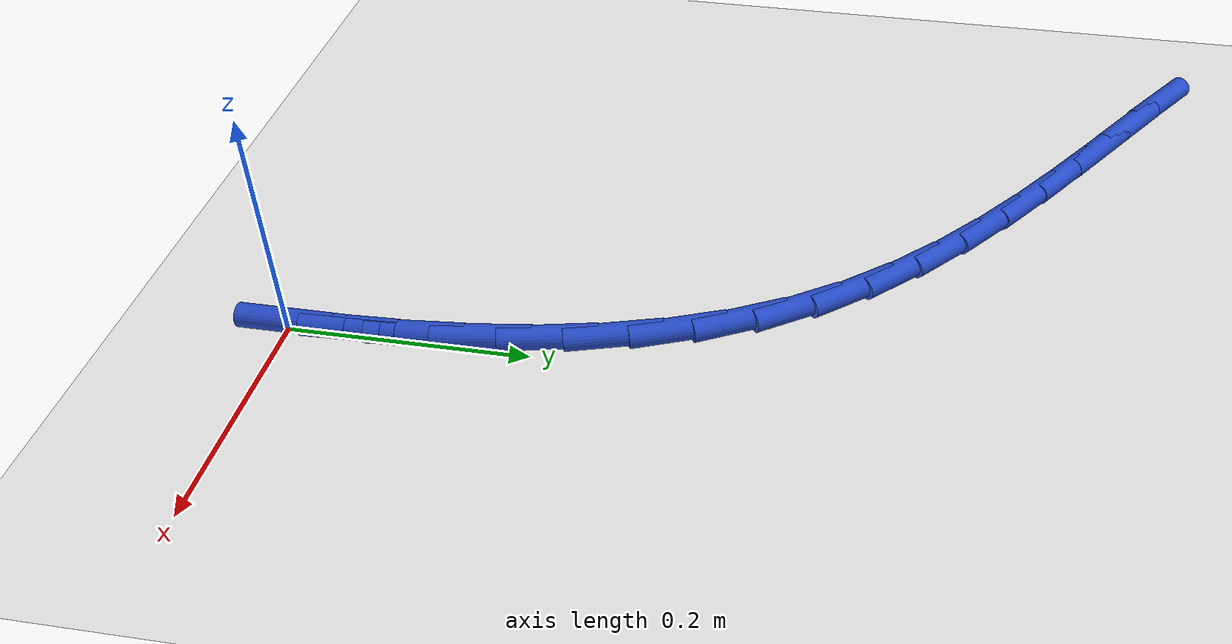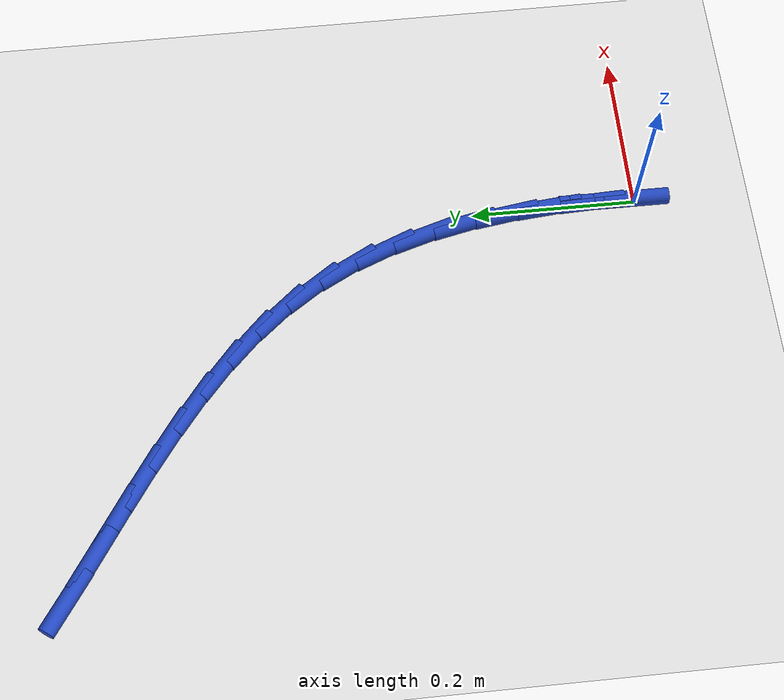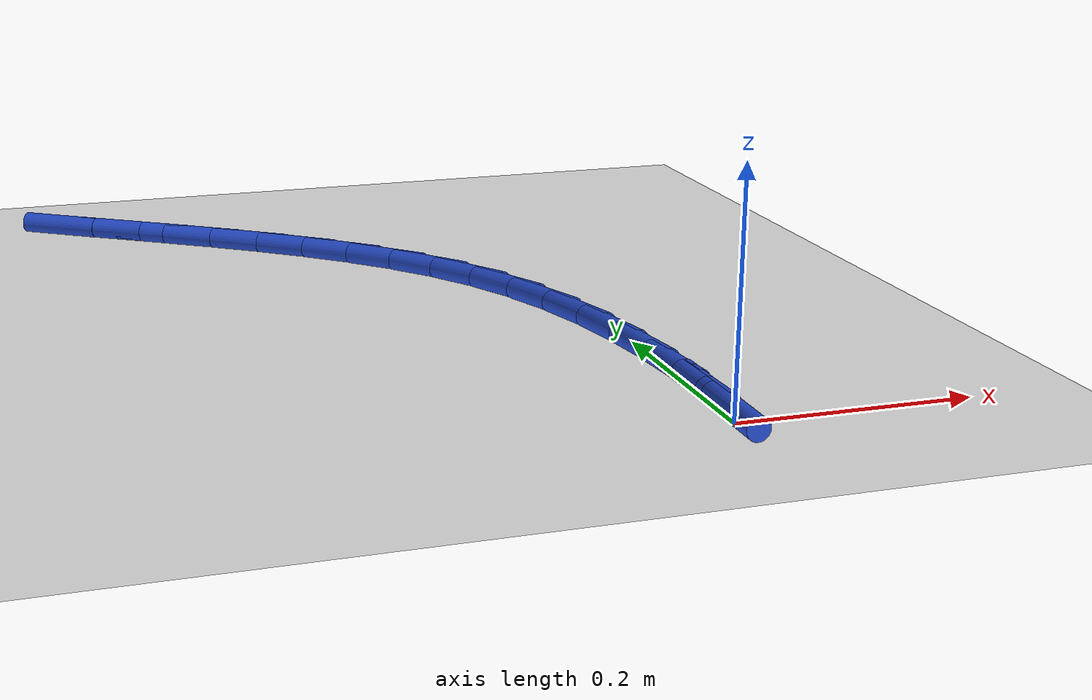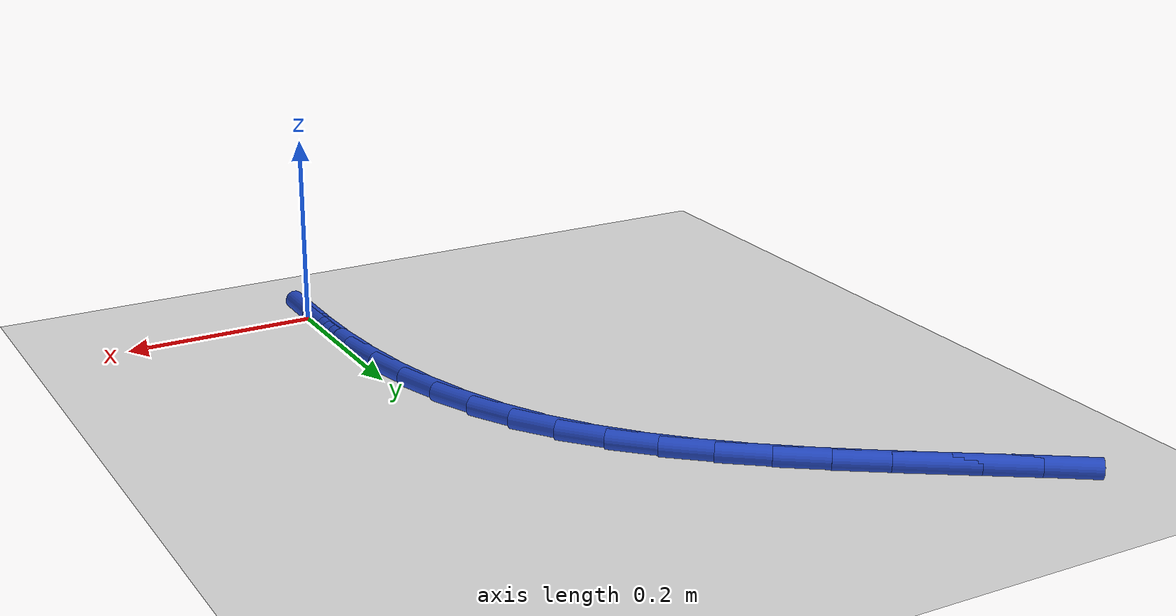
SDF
<sdf version="1.6">
 <world name="default">
  <model name="ground_plane">
   <static>1</static>
   <link name="link">
    <collision name="collision">
     <geometry><plane><normal>0 0 1</normal><size>100 100</size></plane></geometry>
     <surface><friction><ode><mu>100</mu><mu2>50</mu2></ode></friction></surface>
    </collision>
    <visual name="visual">
     <cast_shadows>0</cast_shadows>
     <geometry><plane><normal>0 0 1</normal><size>100 100</size></plane></geometry>
     <material>
      <script><uri>file://media/materials/scripts/gazebo.material</uri><name>Gazebo/WhiteGlow</name></script>
     </material>
    </visual>
   </link>
  </model>
  <model name="line">
   <link name="link_1">
    <pose>0.00016220308232994086 0.0534013091071658 0.01 0 1.57 -1.5304724078214895</pose>
    <collision name="collision">
     <geometry><cylinder><radius>0.01</radius><length>0.08</length></cylinder></geometry>
    </collision>
    <visual name="visual">
     <material>
      <script><name>Gazebo/Blue</name><uri>file://media/materials/scripts/gazebo.material</uri></script>
     </material>
     <geometry><cylinder><radius>0.01</radius><length>0.08</length></cylinder></geometry>
    </visual>
   </link>
   <link name="link_2">
    <pose>-0.0019910451538661202 0.10677114742330737 0.01 0 1.57 -1.4799756854001473</pose>
    <collision name="collision">
     <geometry><cylinder><radius>0.01</radius><length>0.08</length></cylinder></geometry>
    </collision>
    <visual name="visual">
     <material>
      <script><name>Gazebo/Blue</name><uri>file://media/materials/scripts/gazebo.material</uri></script>
     </material>
     <geometry><cylinder><radius>0.01</radius><length>0.08</length></cylinder></geometry>
    </visual>
   </link>
   <link name="link_3">
    <pose>-0.006807744157143915 0.1596605380490093 0.01 0 1.57 -1.4212635857250937</pose>
    <collision name="collision">
     <geometry><cylinder><radius>0.01</radius><length>0.08</length></cylinder></geometry>
    </collision>
    <visual name="visual">
     <material>
      <script><name>Gazebo/Blue</name><uri>file://media/materials/scripts/gazebo.material</uri></script>
     </material>
     <geometry><cylinder><radius>0.01</radius><length>0.08</length></cylinder></geometry>
    </visual>
   </link>
   <link name="link_4">
    <pose>-0.01463589337605914 0.21162050408485625 0.01 0 1.57 -1.3531213712180754</pose>
    <collision name="collision">
     <geometry><cylinder><radius>0.01</radius><length>0.08</length></cylinder></geometry>
    </collision>
    <visual name="visual">
     <material>
      <script><name>Gazebo/Blue</name><uri>file://media/materials/scripts/gazebo.material</uri></script>
     </material>
     <geometry><cylinder><radius>0.01</radius><length>0.08</length></cylinder></geometry>
    </visual>
   </link>
   <link name="link_5">
    <pose>-0.025823492259167476 0.26220206863143286 0.01 0 1.57 -1.2742892462462632</pose>
    <collision name="collision">
     <geometry><cylinder><radius>0.01</radius><length>0.08</length></cylinder></geometry>
    </collision>
    <visual name="visual">
     <material>
      <script><name>Gazebo/Blue</name><uri>file://media/materials/scripts/gazebo.material</uri></script>
     </material>
     <geometry><cylinder><radius>0.01</radius><length>0.08</length></cylinder></geometry>
    </visual>
   </link>
   <link name="link_6">
    <pose>-0.040718540255024624 0.3109562547893239 0.01 0 1.57 -1.1836422986486972</pose>
    <collision name="collision">
     <geometry><cylinder><radius>0.01</radius><length>0.08</length></cylinder></geometry>
    </collision>
    <visual name="visual">
     <material>
      <script><name>Gazebo/Blue</name><uri>file://media/materials/scripts/gazebo.material</uri></script>
     </material>
     <geometry><cylinder><radius>0.01</radius><length>0.08</length></cylinder></geometry>
    </visual>
   </link>
   <link name="link_7">
    <pose>-0.059669036812186264 0.35743408565911367 0.01 0 1.57 -1.0804960133434083</pose>
    <collision name="collision">
     <geometry><cylinder><radius>0.01</radius><length>0.08</length></cylinder></geometry>
    </collision>
    <visual name="visual">
     <material>
      <script><name>Gazebo/Blue</name><uri>file://media/materials/scripts/gazebo.material</uri></script>
     </material>
     <geometry><cylinder><radius>0.01</radius><length>0.08</length></cylinder></geometry>
    </visual>
   </link>
   <link name="link_8">
    <pose>-0.0830229813792081 0.40118658434138715 0.01 0 1.57 -0.9678921384574665</pose>
    <collision name="collision">
     <geometry><cylinder><radius>0.01</radius><length>0.08</length></cylinder></geometry>
    </collision>
    <visual name="visual">
     <material>
      <script><name>Gazebo/Blue</name><uri>file://media/materials/scripts/gazebo.material</uri></script>
     </material>
     <geometry><cylinder><radius>0.01</radius><length>0.08</length></cylinder></geometry>
    </visual>
   </link>
   <link name="link_9">
    <pose>-0.11102216219700192 0.4418589022264239 0.01 0 1.57 -0.8644142401468418</pose>
    <collision name="collision">
     <geometry><cylinder><radius>0.01</radius><length>0.08</length></cylinder></geometry>
    </collision>
    <visual name="visual">
     <material>
      <script><name>Gazebo/Blue</name><uri>file://media/materials/scripts/gazebo.material</uri></script>
     </material>
     <geometry><cylinder><radius>0.01</radius><length>0.08</length></cylinder></geometry>
    </visual>
   </link>
   <link name="link_10">
    <pose>-0.1432744859750789 0.479657959897639 0.01 0 1.57 -0.7778306572685271</pose>
    <collision name="collision">
     <geometry><cylinder><radius>0.01</radius><length>0.08</length></cylinder></geometry>
    </collision>
    <visual name="visual">
     <material>
      <script><name>Gazebo/Blue</name><uri>file://media/materials/scripts/gazebo.material</uri></script>
     </material>
     <geometry><cylinder><radius>0.01</radius><length>0.08</length></cylinder></geometry>
    </visual>
   </link>
   <link name="link_11">
    <pose>-0.17915369398899497 0.5149982039829473 0.01 0 1.57 -0.7081954984737049</pose>
    <collision name="collision">
     <geometry><cylinder><radius>0.01</radius><length>0.08</length></cylinder></geometry>
    </collision>
    <visual name="visual">
     <material>
      <script><name>Gazebo/Blue</name><uri>file://media/materials/scripts/gazebo.material</uri></script>
     </material>
     <geometry><cylinder><radius>0.01</radius><length>0.08</length></cylinder></geometry>
    </visual>
   </link>
   <link name="link_12">
    <pose>-0.218033153467153 0.5482944126046474 0.01 0 1.57 -0.6546868858009461</pose>
    <collision name="collision">
     <geometry><cylinder><radius>0.01</radius><length>0.08</length></cylinder></geometry>
    </collision>
    <visual name="visual">
     <material>
      <script><name>Gazebo/Blue</name><uri>file://media/materials/scripts/gazebo.material</uri></script>
     </material>
     <geometry><cylinder><radius>0.01</radius><length>0.08</length></cylinder></geometry>
    </visual>
   </link>
   <link name="link_13">
    <pose>-0.25928623163795567 0.5799613638850376 0.01 0 1.57 -0.6162054611898571</pose>
    <collision name="collision">
     <geometry><cylinder><radius>0.01</radius><length>0.08</length></cylinder></geometry>
    </collision>
    <visual name="visual">
     <material>
      <script><name>Gazebo/Blue</name><uri>file://media/materials/scripts/gazebo.material</uri></script>
     </material>
     <geometry><cylinder><radius>0.01</radius><length>0.08</length></cylinder></geometry>
    </visual>
   </link>
   <link name="link_14">
    <pose>-0.3022862957298058 0.6104138359464166 0.01 0 1.57 -0.591745949207315</pose>
    <collision name="collision">
     <geometry><cylinder><radius>0.01</radius><length>0.08</length></cylinder></geometry>
    </collision>
    <visual name="visual">
     <material>
      <script><name>Gazebo/Blue</name><uri>file://media/materials/scripts/gazebo.material</uri></script>
     </material>
     <geometry><cylinder><radius>0.01</radius><length>0.08</length></cylinder></geometry>
    </visual>
   </link>
   <link name="link_15">
    <pose>-0.34640671297110626 0.6400666069110827 0.01 0 1.57 -0.5805968481344407</pose>
    <collision name="collision">
     <geometry><cylinder><radius>0.01</radius><length>0.08</length></cylinder></geometry>
    </collision>
    <visual name="visual">
     <material>
      <script><name>Gazebo/Blue</name><uri>file://media/materials/scripts/gazebo.material</uri></script>
     </material>
     <geometry><cylinder><radius>0.01</radius><length>0.08</length></cylinder></geometry>
    </visual>
   </link>
   <link name="link_16">
    <pose>-0.39102085059025976 0.6693344549013343 0.01 0 1.57 -0.5824343099816993</pose>
    <collision name="collision">
     <geometry><cylinder><radius>0.01</radius><length>0.08</length></cylinder></geometry>
    </collision>
    <visual name="visual">
     <material>
      <script><name>Gazebo/Blue</name><uri>file://media/materials/scripts/gazebo.material</uri></script>
     </material>
     <geometry><cylinder><radius>0.01</radius><length>0.08</length></cylinder></geometry>
    </visual>
   </link>
   <link name="link_17">
    <pose>-0.4355020758156693 0.6986321580394699 0.01 0 1.57 -0.5973579654824207</pose>
    <collision name="collision">
     <geometry><cylinder><radius>0.01</radius><length>0.08</length></cylinder></geometry>
    </collision>
    <visual name="visual">
     <material>
      <script><name>Gazebo/Blue</name><uri>file://media/materials/scripts/gazebo.material</uri></script>
     </material>
     <geometry><cylinder><radius>0.01</radius><length>0.08</length></cylinder></geometry>
    </visual>
   </link>
   <link name="link_150">
    <pose>-3.903127820947816e-17 5.551115123125783e-17 0.01 0 1.57 1.5662728761546572</pose>
    <collision name="collision">
     <geometry><cylinder><radius>0.01</radius><length>0.08</length></cylinder></geometry>
    </collision>
    <visual name="visual">
     <material>
      <script><name>Gazebo/Blue</name><uri>file://media/materials/scripts/gazebo.material</uri></script>
     </material>
     <geometry><cylinder><radius>0.01</radius><length>0.08</length></cylinder></geometry>
    </visual>
   </link>
   <link name="link_151">
    <pose>0.00024179207262268153 0.053452649912483816 0.01 0 1.57 1.5662728761546572</pose>
    <collision name="collision">
     <geometry><cylinder><radius>0.01</radius><length>0.08</length></cylinder></geometry>
    </collision>
    <visual name="visual">
     <material>
      <script><name>Gazebo/Blue</name><uri>file://media/materials/scripts/gazebo.material</uri></script>
     </material>
     <geometry><cylinder><radius>0.01</radius><length>0.08</length></cylinder></geometry>
    </visual>
   </link>
  </model>
 </world>
</sdf>
